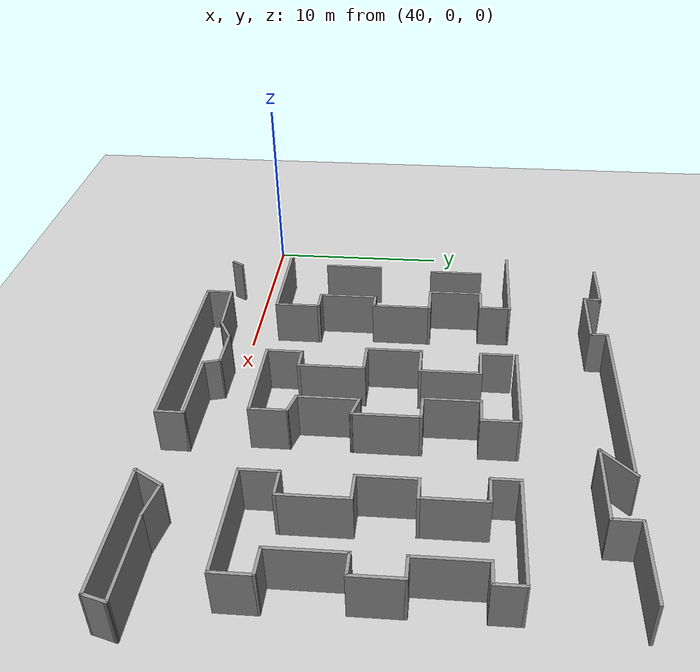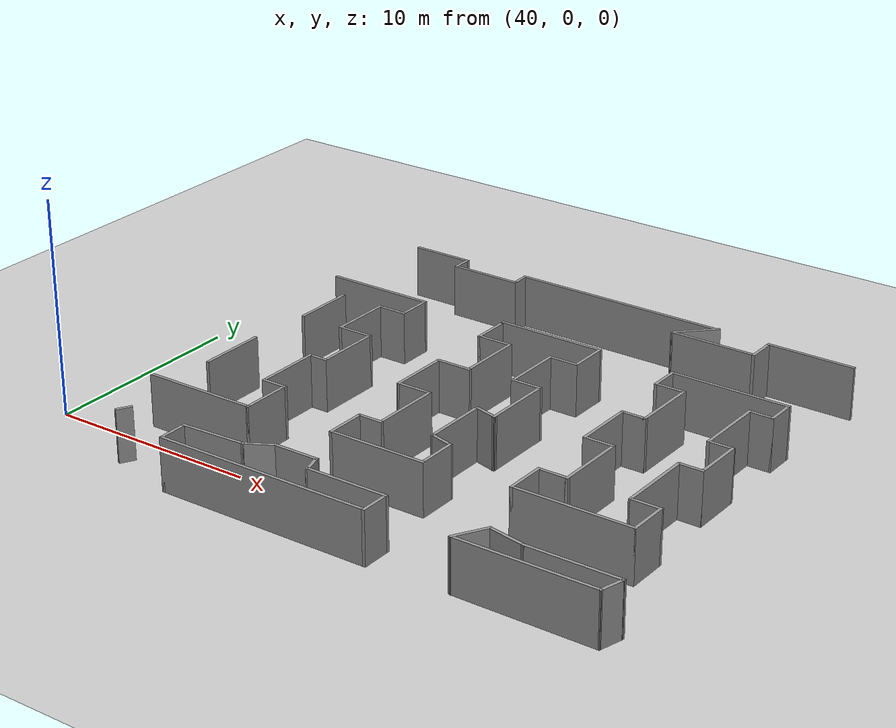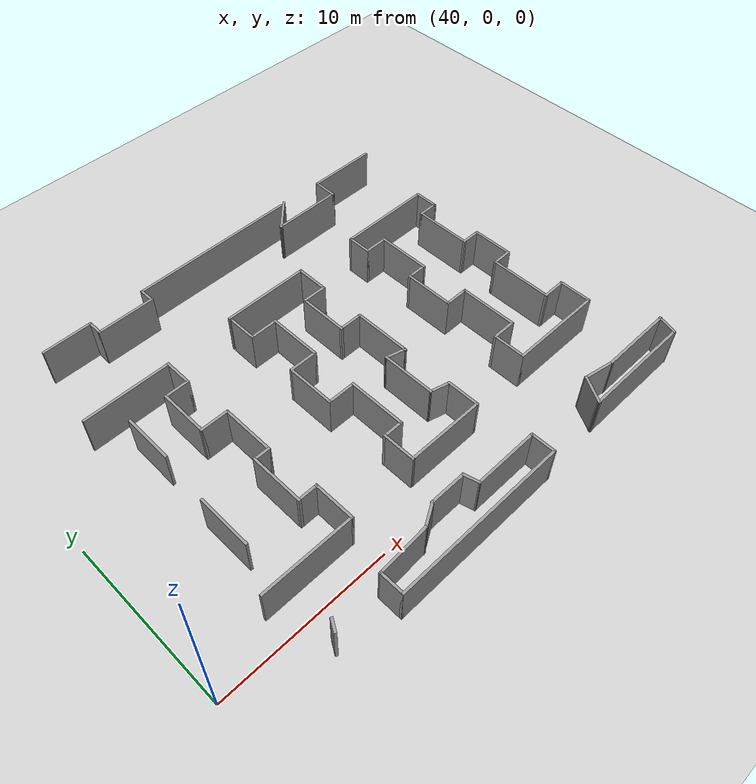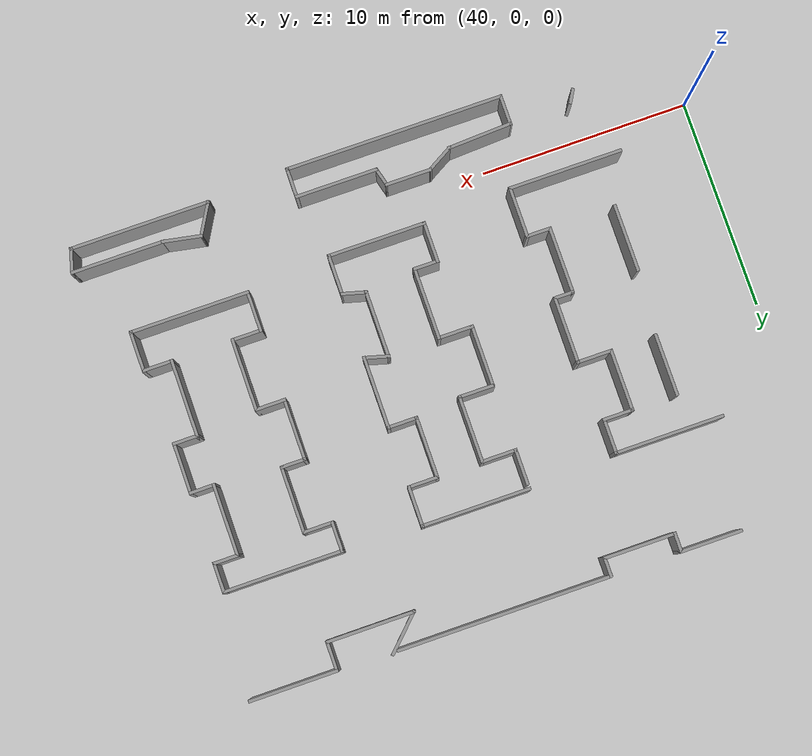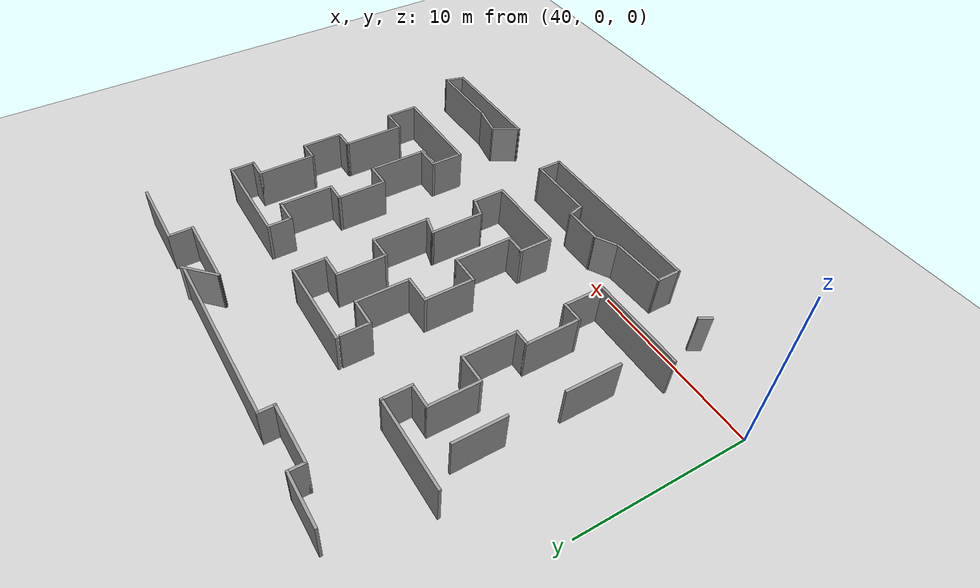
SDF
<sdf version="1.6">
 <world name="default">
  <model name="ground_plane">
   <static>1</static>
   <link name="link">
    <collision name="collision">
     <geometry><plane><normal>0 0 1</normal><size>100 100</size></plane></geometry>
     <surface><friction><ode><mu>100</mu><mu2>50</mu2></ode></friction></surface>
    </collision>
    <visual name="visual">
     <cast_shadows>0</cast_shadows>
     <geometry><plane><normal>0 0 1</normal><size>100 100</size></plane></geometry>
     <material>
      <script><uri>file://media/materials/scripts/gazebo.material</uri><name>Gazebo/Grey</name></script>
     </material>
    </visual>
   </link>
  </model>
  <model name="airport">
   <pose>30.6301 8.89323 0 0 -0 0</pose>
   <link name="Wall_184">
    <collision name="Wall_184_Collision">
     <geometry><box><size>0.75 0.15 2.5</size></box></geometry>
     <pose>0 0 1.25 0 -0 0</pose>
    </collision>
    <visual name="Wall_184_Visual">
     <pose>0 0 1.25 0 -0 0</pose>
     <geometry><box><size>0.75 0.15 2.5</size></box></geometry>
     <material>
      <script><uri>file://media/materials/scripts/gazebo.material</uri><name>Gazebo/Grey</name></script>
      <ambient>1 1 1 1</ambient>
     </material>
     <meta><layer>0</layer></meta>
    </visual>
    <pose>14.5772 -10.5614 0 0 -0 1.0472</pose>
   </link>
   <link name="Wall_196">
    <collision name="Wall_196_Collision">
     <geometry><box><size>3 0.15 2.5</size></box></geometry>
     <pose>0 0 1.25 0 -0 0</pose>
    </collision>
    <visual name="Wall_196_Visual">
     <pose>0 0 1.25 0 -0 0</pose>
     <geometry><box><size>3 0.15 2.5</size></box></geometry>
     <material>
      <script><uri>file://media/materials/scripts/gazebo.material</uri><name>Gazebo/Grey</name></script>
      <ambient>1 1 1 1</ambient>
     </material>
     <meta><layer>0</layer></meta>
    </visual>
    <pose>15.4711 10.6987 0 0 -0 0</pose>
   </link>
   <link name="Wall_201">
    <collision name="Wall_201_Collision">
     <geometry><box><size>3 0.15 2.5</size></box></geometry>
     <pose>0 0 1.25 0 -0 0</pose>
    </collision>
    <visual name="Wall_201_Visual">
     <pose>0 0 1.25 0 -0 0</pose>
     <geometry><box><size>3 0.15 2.5</size></box></geometry>
     <material>
      <script><uri>file://media/materials/scripts/gazebo.material</uri><name>Gazebo/Grey</name></script>
      <ambient>1 1 1 1</ambient>
     </material>
     <meta><layer>0</layer></meta>
    </visual>
    <pose>14.6701 2.53481 0 0 0 -1.5708</pose>
   </link>
   <link name="Wall_205">
    <collision name="Wall_205_Collision">
     <geometry><box><size>3.25 0.15 2.5</size></box></geometry>
     <pose>0 0 1.25 0 -0 0</pose>
    </collision>
    <visual name="Wall_205_Visual">
     <pose>0 0 1.25 0 -0 0</pose>
     <geometry><box><size>3.25 0.15 2.5</size></box></geometry>
     <material>
      <script><uri>file://media/materials/scripts/gazebo.material</uri><name>Gazebo/Grey</name></script>
      <ambient>1 1 1 1</ambient>
     </material>
     <meta><layer>0</layer></meta>
    </visual>
    <pose>14.4201 -3.54019 0 0 0 -1.5708</pose>
   </link>
   <link name="Wall_208">
    <collision name="Wall_208_Collision">
     <geometry><box><size>5.5 0.15 2.5</size></box></geometry>
     <pose>0 0 1.25 0 -0 0</pose>
    </collision>
    <visual name="Wall_208_Visual">
     <pose>0 0 1.25 0 -0 0</pose>
     <geometry><box><size>5.5 0.15 2.5</size></box></geometry>
     <material>
      <script><uri>file://media/materials/scripts/gazebo.material</uri><name>Gazebo/Grey</name></script>
      <ambient>1 1 1 1</ambient>
     </material>
     <meta><layer>0</layer></meta>
    </visual>
    <pose>15.9951 -7.44019 0 0 -0 0</pose>
   </link>
   <link name="Wall_209">
    <collision name="Wall_209_Collision">
     <geometry><box><size>2.5 0.15 2.5</size></box></geometry>
     <pose>0 0 1.25 0 -0 0</pose>
    </collision>
    <visual name="Wall_209_Visual">
     <pose>0 0 1.25 0 -0 0</pose>
     <geometry><box><size>2.5 0.15 2.5</size></box></geometry>
     <material>
      <script><uri>file://media/materials/scripts/gazebo.material</uri><name>Gazebo/Grey</name></script>
      <ambient>1 1 1 1</ambient>
     </material>
     <meta><layer>0</layer></meta>
    </visual>
    <pose>18.6701 -6.26519 0 0 -0 1.5708</pose>
   </link>
   <link name="Wall_210">
    <collision name="Wall_210_Collision">
     <geometry><box><size>1.25 0.15 2.5</size></box></geometry>
     <pose>0 0 1.25 0 -0 0</pose>
    </collision>
    <visual name="Wall_210_Visual">
     <pose>0 0 1.25 0 -0 0</pose>
     <geometry><box><size>1.25 0.15 2.5</size></box></geometry>
     <material>
      <script><uri>file://media/materials/scripts/gazebo.material</uri><name>Gazebo/Grey</name></script>
      <ambient>1 1 1 1</ambient>
     </material>
     <meta><layer>0</layer></meta>
    </visual>
    <pose>18.1201 -5.09019 0 0 -0 3.14159</pose>
   </link>
   <link name="Wall_211">
    <collision name="Wall_211_Collision">
     <geometry><box><size>3.25 0.15 2.5</size></box></geometry>
     <pose>0 0 1.25 0 -0 0</pose>
    </collision>
    <visual name="Wall_211_Visual">
     <pose>0 0 1.25 0 -0 0</pose>
     <geometry><box><size>3.25 0.15 2.5</size></box></geometry>
     <material>
      <script><uri>file://media/materials/scripts/gazebo.material</uri><name>Gazebo/Grey</name></script>
      <ambient>1 1 1 1</ambient>
     </material>
     <meta><layer>0</layer></meta>
    </visual>
    <pose>17.5701 -3.54019 0 0 -0 1.5708</pose>
   </link>
   <link name="Wall_212">
    <collision name="Wall_212_Collision">
     <geometry><box><size>1 0.15 2.5</size></box></geometry>
     <pose>0 0 1.25 0 -0 0</pose>
    </collision>
    <visual name="Wall_212_Visual">
     <pose>0 0 1.25 0 -0 0</pose>
     <geometry><box><size>1 0.15 2.5</size></box></geometry>
     <material>
      <script><uri>file://media/materials/scripts/gazebo.material</uri><name>Gazebo/Grey</name></script>
      <ambient>1 1 1 1</ambient>
     </material>
     <meta><layer>0</layer></meta>
    </visual>
    <pose>17.9951 -1.99019 0 0 -0 0</pose>
   </link>
   <link name="Wall_213">
    <collision name="Wall_213_Collision">
     <geometry><box><size>3.25 0.15 2.5</size></box></geometry>
     <pose>0 0 1.25 0 -0 0</pose>
    </collision>
    <visual name="Wall_213_Visual">
     <pose>0 0 1.25 0 -0 0</pose>
     <geometry><box><size>3.25 0.15 2.5</size></box></geometry>
     <material>
      <script><uri>file://media/materials/scripts/gazebo.material</uri><name>Gazebo/Grey</name></script>
      <ambient>1 1 1 1</ambient>
     </material>
     <meta><layer>0</layer></meta>
    </visual>
    <pose>18.4201 -0.44019 0 0 -0 1.5708</pose>
   </link>
   <link name="Wall_214">
    <collision name="Wall_214_Collision">
     <geometry><box><size>1.75 0.15 2.5</size></box></geometry>
     <pose>0 0 1.25 0 -0 0</pose>
    </collision>
    <visual name="Wall_214_Visual">
     <pose>0 0 1.25 0 -0 0</pose>
     <geometry><box><size>1.75 0.15 2.5</size></box></geometry>
     <material>
      <script><uri>file://media/materials/scripts/gazebo.material</uri><name>Gazebo/Grey</name></script>
      <ambient>1 1 1 1</ambient>
     </material>
     <meta><layer>0</layer></meta>
    </visual>
    <pose>17.6201 1.10981 0 0 -0 3.14159</pose>
   </link>
   <link name="Wall_215">
    <collision name="Wall_215_Collision">
     <geometry><box><size>3 0.15 2.5</size></box></geometry>
     <pose>0 0 1.25 0 -0 0</pose>
    </collision>
    <visual name="Wall_215_Visual">
     <pose>0 0 1.25 0 -0 0</pose>
     <geometry><box><size>3 0.15 2.5</size></box></geometry>
     <material>
      <script><uri>file://media/materials/scripts/gazebo.material</uri><name>Gazebo/Grey</name></script>
      <ambient>1 1 1 1</ambient>
     </material>
     <meta><layer>0</layer></meta>
    </visual>
    <pose>16.8201 2.53481 0 0 -0 1.5708</pose>
   </link>
   <link name="Wall_216">
    <collision name="Wall_216_Collision">
     <geometry><box><size>1.5 0.15 2.5</size></box></geometry>
     <pose>0 0 1.25 0 -0 0</pose>
    </collision>
    <visual name="Wall_216_Visual">
     <pose>0 0 1.25 0 -0 0</pose>
     <geometry><box><size>1.5 0.15 2.5</size></box></geometry>
     <material>
      <script><uri>file://media/materials/scripts/gazebo.material</uri><name>Gazebo/Grey</name></script>
      <ambient>1 1 1 1</ambient>
     </material>
     <meta><layer>0</layer></meta>
    </visual>
    <pose>17.4951 3.95981 0 0 -0 0</pose>
   </link>
   <link name="Wall_217">
    <collision name="Wall_217_Collision">
     <geometry><box><size>1.75 0.15 2.5</size></box></geometry>
     <pose>0 0 1.25 0 -0 0</pose>
    </collision>
    <visual name="Wall_217_Visual">
     <pose>0 0 1.25 0 -0 0</pose>
     <geometry><box><size>1.75 0.15 2.5</size></box></geometry>
     <material>
      <script><uri>file://media/materials/scripts/gazebo.material</uri><name>Gazebo/Grey</name></script>
      <ambient>1 1 1 1</ambient>
     </material>
     <meta><layer>0</layer></meta>
    </visual>
    <pose>18.1701 4.75981 0 0 -0 1.5708</pose>
   </link>
   <link name="Wall_218">
    <collision name="Wall_218_Collision">
     <geometry><box><size>5.25 0.15 2.5</size></box></geometry>
     <pose>0 0 1.25 0 -0 0</pose>
    </collision>
    <visual name="Wall_218_Visual">
     <pose>0 0 1.25 0 -0 0</pose>
     <geometry><box><size>5.25 0.15 2.5</size></box></geometry>
     <material>
      <script><uri>file://media/materials/scripts/gazebo.material</uri><name>Gazebo/Grey</name></script>
      <ambient>1 1 1 1</ambient>
     </material>
     <meta><layer>0</layer></meta>
    </visual>
    <pose>15.6201 5.55981 0 0 -0 3.14159</pose>
   </link>
   <link name="Wall_222">
    <collision name="Wall_222_Collision">
     <geometry><box><size>1.5 0.15 2.5</size></box></geometry>
     <pose>0 0 1.25 0 -0 0</pose>
    </collision>
    <visual name="Wall_222_Visual">
     <pose>0 0 1.25 0 -0 0</pose>
     <geometry><box><size>1.5 0.15 2.5</size></box></geometry>
     <material>
      <script><uri>file://media/materials/scripts/gazebo.material</uri><name>Gazebo/Grey</name></script>
      <ambient>1 1 1 1</ambient>
     </material>
     <meta><layer>0</layer></meta>
    </visual>
    <pose>17.6662 -10.9441 0 0 0 -1.5708</pose>
   </link>
   <link name="Wall_223">
    <collision name="Wall_223_Collision">
     <geometry><box><size>10.5 0.15 2.5</size></box></geometry>
     <pose>0 0 1.25 0 -0 0</pose>
    </collision>
    <visual name="Wall_223_Visual">
     <pose>0 0 1.25 0 -0 0</pose>
     <geometry><box><size>10.5 0.15 2.5</size></box></geometry>
     <material>
      <script><uri>file://media/materials/scripts/gazebo.material</uri><name>Gazebo/Grey</name></script>
      <ambient>1 1 1 1</ambient>
     </material>
     <meta><layer>0</layer></meta>
    </visual>
    <pose>22.8412 -11.6191 0 0 -0 0</pose>
   </link>
   <link name="Wall_224">
    <collision name="Wall_224_Collision">
     <geometry><box><size>1.5 0.15 2.5</size></box></geometry>
     <pose>0 0 1.25 0 -0 0</pose>
    </collision>
    <visual name="Wall_224_Visual">
     <pose>0 0 1.25 0 -0 0</pose>
     <geometry><box><size>1.5 0.15 2.5</size></box></geometry>
     <material>
      <script><uri>file://media/materials/scripts/gazebo.material</uri><name>Gazebo/Grey</name></script>
      <ambient>1 1 1 1</ambient>
     </material>
     <meta><layer>0</layer></meta>
    </visual>
    <pose>28.0162 -10.9441 0 0 -0 1.5708</pose>
   </link>
   <link name="Wall_225">
    <collision name="Wall_225_Collision">
     <geometry><box><size>4 0.15 2.5</size></box></geometry>
     <pose>0 0 1.25 0 -0 0</pose>
    </collision>
    <visual name="Wall_225_Visual">
     <pose>0 0 1.25 0 -0 0</pose>
     <geometry><box><size>4 0.15 2.5</size></box></geometry>
     <material>
      <script><uri>file://media/materials/scripts/gazebo.material</uri><name>Gazebo/Grey</name></script>
      <ambient>1 1 1 1</ambient>
     </material>
     <meta><layer>0</layer></meta>
    </visual>
    <pose>26.0912 -10.2691 0 0 -0 3.14159</pose>
   </link>
   <link name="Wall_226">
    <collision name="Wall_226_Collision">
     <geometry><box><size>1 0.15 2.5</size></box></geometry>
     <pose>0 0 1.25 0 -0 0</pose>
    </collision>
    <visual name="Wall_226_Visual">
     <pose>0 0 1.25 0 -0 0</pose>
     <geometry><box><size>1 0.15 2.5</size></box></geometry>
     <material>
      <script><uri>file://media/materials/scripts/gazebo.material</uri><name>Gazebo/Grey</name></script>
      <ambient>1 1 1 1</ambient>
     </material>
     <meta><layer>0</layer></meta>
    </visual>
    <pose>24.0562 -9.85857 0 0 -0 1.8326</pose>
   </link>
   <link name="Wall_227">
    <collision name="Wall_227_Collision">
     <geometry><box><size>2.25 0.15 2.5</size></box></geometry>
     <pose>0 0 1.25 0 -0 0</pose>
    </collision>
    <visual name="Wall_227_Visual">
     <pose>0 0 1.25 0 -0 0</pose>
     <geometry><box><size>2.25 0.15 2.5</size></box></geometry>
     <material>
      <script><uri>file://media/materials/scripts/gazebo.material</uri><name>Gazebo/Grey</name></script>
      <ambient>1 1 1 1</ambient>
     </material>
     <meta><layer>0</layer></meta>
    </visual>
    <pose>22.8962 -9.44805 0 0 -0 3.14159</pose>
   </link>
   <link name="Wall_228">
    <collision name="Wall_228_Collision">
     <geometry><box><size>1.5 0.15 2.5</size></box></geometry>
     <pose>0 0 1.25 0 -0 0</pose>
    </collision>
    <visual name="Wall_228_Visual">
     <pose>0 0 1.25 0 -0 0</pose>
     <geometry><box><size>1.5 0.15 2.5</size></box></geometry>
     <material>
      <script><uri>file://media/materials/scripts/gazebo.material</uri><name>Gazebo/Grey</name></script>
      <ambient>1 1 1 1</ambient>
     </material>
     <meta><layer>0</layer></meta>
    </visual>
    <pose>21.2617 -9.78555 0 0 0 -2.61799</pose>
   </link>
   <link name="Wall_229">
    <collision name="Wall_229_Collision">
     <geometry><box><size>3.16441 0.15 2.5</size></box></geometry>
     <pose>0 0 1.25 0 -0 0</pose>
    </collision>
    <visual name="Wall_229_Visual">
     <pose>0 0 1.25 0 -0 0</pose>
     <geometry><box><size>3.16441 0.15 2.5</size></box></geometry>
     <material>
      <script><uri>file://media/materials/scripts/gazebo.material</uri><name>Gazebo/Grey</name></script>
      <ambient>1 1 1 1</ambient>
     </material>
     <meta><layer>0</layer></meta>
    </visual>
    <pose>19.1716 -10.1961 0 0 0 -3.09313</pose>
   </link>
   <link name="Wall_234">
    <collision name="Wall_234_Collision">
     <geometry><box><size>1.75 0.15 2.5</size></box></geometry>
     <pose>0 0 1.25 0 -0 0</pose>
    </collision>
    <visual name="Wall_234_Visual">
     <pose>0 0 1.25 0 -0 0</pose>
     <geometry><box><size>1.75 0.15 2.5</size></box></geometry>
     <material>
      <script><uri>file://media/materials/scripts/gazebo.material</uri><name>Gazebo/Grey</name></script>
      <ambient>1 1 1 1</ambient>
     </material>
     <meta><layer>0</layer></meta>
    </visual>
    <pose>22.4113 4.74801 0 0 0 -1.5708</pose>
   </link>
   <link name="Wall_235">
    <collision name="Wall_235_Collision">
     <geometry><box><size>1.75 0.15 2.5</size></box></geometry>
     <pose>0 0 1.25 0 -0 0</pose>
    </collision>
    <visual name="Wall_235_Visual">
     <pose>0 0 1.25 0 -0 0</pose>
     <geometry><box><size>1.75 0.15 2.5</size></box></geometry>
     <material>
      <script><uri>file://media/materials/scripts/gazebo.material</uri><name>Gazebo/Grey</name></script>
      <ambient>1 1 1 1</ambient>
     </material>
     <meta><layer>0</layer></meta>
    </visual>
    <pose>23.2113 3.94801 0 0 -0 0</pose>
   </link>
   <link name="Wall_236">
    <collision name="Wall_236_Collision">
     <geometry><box><size>3.25 0.15 2.5</size></box></geometry>
     <pose>0 0 1.25 0 -0 0</pose>
    </collision>
    <visual name="Wall_236_Visual">
     <pose>0 0 1.25 0 -0 0</pose>
     <geometry><box><size>3.25 0.15 2.5</size></box></geometry>
     <material>
      <script><uri>file://media/materials/scripts/gazebo.material</uri><name>Gazebo/Grey</name></script>
      <ambient>1 1 1 1</ambient>
     </material>
     <meta><layer>0</layer></meta>
    </visual>
    <pose>24.0113 2.39801 0 0 0 -1.5708</pose>
   </link>
   <link name="Wall_239">
    <collision name="Wall_239_Collision">
     <geometry><box><size>1.75 0.15 2.5</size></box></geometry>
     <pose>0 0 1.25 0 -0 0</pose>
    </collision>
    <visual name="Wall_239_Visual">
     <pose>0 0 1.25 0 -0 0</pose>
     <geometry><box><size>1.75 0.15 2.5</size></box></geometry>
     <material>
      <script><uri>file://media/materials/scripts/gazebo.material</uri><name>Gazebo/Grey</name></script>
      <ambient>1 1 1 1</ambient>
     </material>
     <meta><layer>0</layer></meta>
    </visual>
    <pose>23.2113 0.848013 0 0 -0 3.14159</pose>
   </link>
   <link name="Wall_240">
    <collision name="Wall_240_Collision">
     <geometry><box><size>3 0.15 2.5</size></box></geometry>
     <pose>0 0 1.25 0 -0 0</pose>
    </collision>
    <visual name="Wall_240_Visual">
     <pose>0 0 1.25 0 -0 0</pose>
     <geometry><box><size>3 0.15 2.5</size></box></geometry>
     <material>
      <script><uri>file://media/materials/scripts/gazebo.material</uri><name>Gazebo/Grey</name></script>
      <ambient>1 1 1 1</ambient>
     </material>
     <meta><layer>0</layer></meta>
    </visual>
    <pose>22.4113 -0.576987 0 0 0 -1.5708</pose>
   </link>
   <link name="Wall_241">
    <collision name="Wall_241_Collision">
     <geometry><box><size>1.75 0.15 2.5</size></box></geometry>
     <pose>0 0 1.25 0 -0 0</pose>
    </collision>
    <visual name="Wall_241_Visual">
     <pose>0 0 1.25 0 -0 0</pose>
     <geometry><box><size>1.75 0.15 2.5</size></box></geometry>
     <material>
      <script><uri>file://media/materials/scripts/gazebo.material</uri><name>Gazebo/Grey</name></script>
      <ambient>1 1 1 1</ambient>
     </material>
     <meta><layer>0</layer></meta>
    </visual>
    <pose>23.2113 -2.00199 0 0 -0 0</pose>
   </link>
   <link name="Wall_244">
    <collision name="Wall_244_Collision">
     <geometry><box><size>3.5 0.15 2.5</size></box></geometry>
     <pose>0 0 1.25 0 -0 0</pose>
    </collision>
    <visual name="Wall_244_Visual">
     <pose>0 0 1.25 0 -0 0</pose>
     <geometry><box><size>3.5 0.15 2.5</size></box></geometry>
     <material>
      <script><uri>file://media/materials/scripts/gazebo.material</uri><name>Gazebo/Grey</name></script>
      <ambient>1 1 1 1</ambient>
     </material>
     <meta><layer>0</layer></meta>
    </visual>
    <pose>24.0113 -3.67699 0 0 0 -1.5708</pose>
   </link>
   <link name="Wall_245">
    <collision name="Wall_245_Collision">
     <geometry><box><size>1.25 0.15 2.5</size></box></geometry>
     <pose>0 0 1.25 0 -0 0</pose>
    </collision>
    <visual name="Wall_245_Visual">
     <pose>0 0 1.25 0 -0 0</pose>
     <geometry><box><size>1.25 0.15 2.5</size></box></geometry>
     <material>
      <script><uri>file://media/materials/scripts/gazebo.material</uri><name>Gazebo/Grey</name></script>
      <ambient>1 1 1 1</ambient>
     </material>
     <meta><layer>0</layer></meta>
    </visual>
    <pose>23.4613 -5.35199 0 0 -0 3.14159</pose>
   </link>
   <link name="Wall_246">
    <collision name="Wall_246_Collision">
     <geometry><box><size>2 0.15 2.5</size></box></geometry>
     <pose>0 0 1.25 0 -0 0</pose>
    </collision>
    <visual name="Wall_246_Visual">
     <pose>0 0 1.25 0 -0 0</pose>
     <geometry><box><size>2 0.15 2.5</size></box></geometry>
     <material>
      <script><uri>file://media/materials/scripts/gazebo.material</uri><name>Gazebo/Grey</name></script>
      <ambient>1 1 1 1</ambient>
     </material>
     <meta><layer>0</layer></meta>
    </visual>
    <pose>22.9113 -6.27699 0 0 0 -1.5708</pose>
   </link>
   <link name="Wall_247">
    <collision name="Wall_247_Collision">
     <geometry><box><size>4.75 0.15 2.5</size></box></geometry>
     <pose>0 0 1.25 0 -0 0</pose>
    </collision>
    <visual name="Wall_247_Visual">
     <pose>0 0 1.25 0 -0 0</pose>
     <geometry><box><size>4.75 0.15 2.5</size></box></geometry>
     <material>
      <script><uri>file://media/materials/scripts/gazebo.material</uri><name>Gazebo/Grey</name></script>
      <ambient>1 1 1 1</ambient>
     </material>
     <meta><layer>0</layer></meta>
    </visual>
    <pose>25.2113 -7.20199 0 0 -0 0</pose>
   </link>
   <link name="Wall_248">
    <collision name="Wall_248_Collision">
     <geometry><box><size>2 0.15 2.5</size></box></geometry>
     <pose>0 0 1.25 0 -0 0</pose>
    </collision>
    <visual name="Wall_248_Visual">
     <pose>0 0 1.25 0 -0 0</pose>
     <geometry><box><size>2 0.15 2.5</size></box></geometry>
     <material>
      <script><uri>file://media/materials/scripts/gazebo.material</uri><name>Gazebo/Grey</name></script>
      <ambient>1 1 1 1</ambient>
     </material>
     <meta><layer>0</layer></meta>
    </visual>
    <pose>27.5113 -6.27699 0 0 -0 1.5708</pose>
   </link>
   <link name="Wall_249">
    <collision name="Wall_249_Collision">
     <geometry><box><size>1.25 0.15 2.5</size></box></geometry>
     <pose>0 0 1.25 0 -0 0</pose>
    </collision>
    <visual name="Wall_249_Visual">
     <pose>0 0 1.25 0 -0 0</pose>
     <geometry><box><size>1.25 0.15 2.5</size></box></geometry>
     <material>
      <script><uri>file://media/materials/scripts/gazebo.material</uri><name>Gazebo/Grey</name></script>
      <ambient>1 1 1 1</ambient>
     </material>
     <meta><layer>0</layer></meta>
    </visual>
    <pose>26.9801 -5.20964 0 0 -0 2.87979</pose>
   </link>
   <link name="Wall_250">
    <collision name="Wall_250_Collision">
     <geometry><box><size>3.25 0.15 2.5</size></box></geometry>
     <pose>0 0 1.25 0 -0 0</pose>
    </collision>
    <visual name="Wall_250_Visual">
     <pose>0 0 1.25 0 -0 0</pose>
     <geometry><box><size>3.25 0.15 2.5</size></box></geometry>
     <material>
      <script><uri>file://media/materials/scripts/gazebo.material</uri><name>Gazebo/Grey</name></script>
      <ambient>1 1 1 1</ambient>
     </material>
     <meta><layer>0</layer></meta>
    </visual>
    <pose>26.4488 -3.51729 0 0 -0 1.5708</pose>
   </link>
   <link name="Wall_251">
    <collision name="Wall_251_Collision">
     <geometry><box><size>1.25 0.15 2.5</size></box></geometry>
     <pose>0 0 1.25 0 -0 0</pose>
    </collision>
    <visual name="Wall_251_Visual">
     <pose>0 0 1.25 0 -0 0</pose>
     <geometry><box><size>1.25 0.15 2.5</size></box></geometry>
     <material>
      <script><uri>file://media/materials/scripts/gazebo.material</uri><name>Gazebo/Grey</name></script>
      <ambient>1 1 1 1</ambient>
     </material>
     <meta><layer>0</layer></meta>
    </visual>
    <pose>26.9801 -2.10964 0 0 0 -0.261799</pose>
   </link>
   <link name="Wall_252">
    <collision name="Wall_252_Collision">
     <geometry><box><size>3.5 0.15 2.5</size></box></geometry>
     <pose>0 0 1.25 0 -0 0</pose>
    </collision>
    <visual name="Wall_252_Visual">
     <pose>0 0 1.25 0 -0 0</pose>
     <geometry><box><size>3.5 0.15 2.5</size></box></geometry>
     <material>
      <script><uri>file://media/materials/scripts/gazebo.material</uri><name>Gazebo/Grey</name></script>
      <ambient>1 1 1 1</ambient>
     </material>
     <meta><layer>0</layer></meta>
    </visual>
    <pose>27.5113 -0.576987 0 0 -0 1.5708</pose>
   </link>
   <link name="Wall_253">
    <collision name="Wall_253_Collision">
     <geometry><box><size>1.5 0.15 2.5</size></box></geometry>
     <pose>0 0 1.25 0 -0 0</pose>
    </collision>
    <visual name="Wall_253_Visual">
     <pose>0 0 1.25 0 -0 0</pose>
     <geometry><box><size>1.5 0.15 2.5</size></box></geometry>
     <material>
      <script><uri>file://media/materials/scripts/gazebo.material</uri><name>Gazebo/Grey</name></script>
      <ambient>1 1 1 1</ambient>
     </material>
     <meta><layer>0</layer></meta>
    </visual>
    <pose>26.8363 1.09801 0 0 -0 3.14159</pose>
   </link>
   <link name="Wall_254">
    <collision name="Wall_254_Collision">
     <geometry><box><size>3 0.15 2.5</size></box></geometry>
     <pose>0 0 1.25 0 -0 0</pose>
    </collision>
    <visual name="Wall_254_Visual">
     <pose>0 0 1.25 0 -0 0</pose>
     <geometry><box><size>3 0.15 2.5</size></box></geometry>
     <material>
      <script><uri>file://media/materials/scripts/gazebo.material</uri><name>Gazebo/Grey</name></script>
      <ambient>1 1 1 1</ambient>
     </material>
     <meta><layer>0</layer></meta>
    </visual>
    <pose>26.1613 2.52301 0 0 -0 1.5708</pose>
   </link>
   <link name="Wall_255">
    <collision name="Wall_255_Collision">
     <geometry><box><size>1.5 0.15 2.5</size></box></geometry>
     <pose>0 0 1.25 0 -0 0</pose>
    </collision>
    <visual name="Wall_255_Visual">
     <pose>0 0 1.25 0 -0 0</pose>
     <geometry><box><size>1.5 0.15 2.5</size></box></geometry>
     <material>
      <script><uri>file://media/materials/scripts/gazebo.material</uri><name>Gazebo/Grey</name></script>
      <ambient>1 1 1 1</ambient>
     </material>
     <meta><layer>0</layer></meta>
    </visual>
    <pose>26.8363 3.94801 0 0 -0 0</pose>
   </link>
   <link name="Wall_256">
    <collision name="Wall_256_Collision">
     <geometry><box><size>2 0.15 2.5</size></box></geometry>
     <pose>0 0 1.25 0 -0 0</pose>
    </collision>
    <visual name="Wall_256_Visual">
     <pose>0 0 1.25 0 -0 0</pose>
     <geometry><box><size>2 0.15 2.5</size></box></geometry>
     <material>
      <script><uri>file://media/materials/scripts/gazebo.material</uri><name>Gazebo/Grey</name></script>
      <ambient>1 1 1 1</ambient>
     </material>
     <meta><layer>0</layer></meta>
    </visual>
    <pose>27.5113 4.87301 0 0 -0 1.5708</pose>
   </link>
   <link name="Wall_257">
    <collision name="Wall_257_Collision">
     <geometry><box><size>5.25 0.15 2.5</size></box></geometry>
     <pose>0 0 1.25 0 -0 0</pose>
    </collision>
    <visual name="Wall_257_Visual">
     <pose>0 0 1.25 0 -0 0</pose>
     <geometry><box><size>5.25 0.15 2.5</size></box></geometry>
     <material>
      <script><uri>file://media/materials/scripts/gazebo.material</uri><name>Gazebo/Grey</name></script>
      <ambient>1 1 1 1</ambient>
     </material>
     <meta><layer>0</layer></meta>
    </visual>
    <pose>24.9613 5.79801 0 0 -0 3.14159</pose>
   </link>
   <link name="Wall_261">
    <collision name="Wall_261_Collision">
     <geometry><box><size>1 0.15 2.5</size></box></geometry>
     <pose>0 0 1.25 0 -0 0</pose>
    </collision>
    <visual name="Wall_261_Visual">
     <pose>0 0 1.25 0 -0 0</pose>
     <geometry><box><size>1 0.15 2.5</size></box></geometry>
     <material>
      <script><uri>file://media/materials/scripts/gazebo.material</uri><name>Gazebo/Grey</name></script>
      <ambient>1 1 1 1</ambient>
     </material>
     <meta><layer>0</layer></meta>
    </visual>
    <pose>16.8961 10.2737 0 0 0 -1.5708</pose>
   </link>
   <link name="Wall_262">
    <collision name="Wall_262_Collision">
     <geometry><box><size>3.5 0.15 2.5</size></box></geometry>
     <pose>0 0 1.25 0 -0 0</pose>
    </collision>
    <visual name="Wall_262_Visual">
     <pose>0 0 1.25 0 -0 0</pose>
     <geometry><box><size>3.5 0.15 2.5</size></box></geometry>
     <material>
      <script><uri>file://media/materials/scripts/gazebo.material</uri><name>Gazebo/Grey</name></script>
      <ambient>1 1 1 1</ambient>
     </material>
     <meta><layer>0</layer></meta>
    </visual>
    <pose>18.5711 9.84868 0 0 -0 0</pose>
   </link>
   <link name="Wall_263">
    <collision name="Wall_263_Collision">
     <geometry><box><size>1 0.15 2.5</size></box></geometry>
     <pose>0 0 1.25 0 -0 0</pose>
    </collision>
    <visual name="Wall_263_Visual">
     <pose>0 0 1.25 0 -0 0</pose>
     <geometry><box><size>1 0.15 2.5</size></box></geometry>
     <material>
      <script><uri>file://media/materials/scripts/gazebo.material</uri><name>Gazebo/Grey</name></script>
      <ambient>1 1 1 1</ambient>
     </material>
     <meta><layer>0</layer></meta>
    </visual>
    <pose>20.2461 10.2737 0 0 -0 1.5708</pose>
   </link>
   <link name="Wall_264">
    <collision name="Wall_264_Collision">
     <geometry><box><size>10.25 0.15 2.5</size></box></geometry>
     <pose>0 0 1.25 0 -0 0</pose>
    </collision>
    <visual name="Wall_264_Visual">
     <pose>0 0 1.25 0 -0 0</pose>
     <geometry><box><size>10.25 0.15 2.5</size></box></geometry>
     <material>
      <script><uri>file://media/materials/scripts/gazebo.material</uri><name>Gazebo/Grey</name></script>
      <ambient>1 1 1 1</ambient>
     </material>
     <meta><layer>0</layer></meta>
    </visual>
    <pose>25.2961 10.6987 0 0 -0 0</pose>
   </link>
   <link name="Wall_266">
    <collision name="Wall_266_Collision">
     <geometry><box><size>1.5 0.15 2.5</size></box></geometry>
     <pose>0 0 1.25 0 -0 0</pose>
    </collision>
    <visual name="Wall_266_Visual">
     <pose>0 0 1.25 0 -0 0</pose>
     <geometry><box><size>1.5 0.15 2.5</size></box></geometry>
     <material>
      <script><uri>file://media/materials/scripts/gazebo.material</uri><name>Gazebo/Grey</name></script>
      <ambient>1 1 1 1</ambient>
     </material>
     <meta><layer>0</layer></meta>
    </visual>
    <pose>31.2933 4.99468 0 0 0 -1.5708</pose>
   </link>
   <link name="Wall_267">
    <collision name="Wall_267_Collision">
     <geometry><box><size>1.5 0.15 2.5</size></box></geometry>
     <pose>0 0 1.25 0 -0 0</pose>
    </collision>
    <visual name="Wall_267_Visual">
     <pose>0 0 1.25 0 -0 0</pose>
     <geometry><box><size>1.5 0.15 2.5</size></box></geometry>
     <material>
      <script><uri>file://media/materials/scripts/gazebo.material</uri><name>Gazebo/Grey</name></script>
      <ambient>1 1 1 1</ambient>
     </material>
     <meta><layer>0</layer></meta>
    </visual>
    <pose>31.9683 4.31968 0 0 -0 0</pose>
   </link>
   <link name="Wall_268">
    <collision name="Wall_268_Collision">
     <geometry><box><size>3.25 0.15 2.5</size></box></geometry>
     <pose>0 0 1.25 0 -0 0</pose>
    </collision>
    <visual name="Wall_268_Visual">
     <pose>0 0 1.25 0 -0 0</pose>
     <geometry><box><size>3.25 0.15 2.5</size></box></geometry>
     <material>
      <script><uri>file://media/materials/scripts/gazebo.material</uri><name>Gazebo/Grey</name></script>
      <ambient>1 1 1 1</ambient>
     </material>
     <meta><layer>0</layer></meta>
    </visual>
    <pose>32.6433 2.76968 0 0 0 -1.5708</pose>
   </link>
   <link name="Wall_269">
    <collision name="Wall_269_Collision">
     <geometry><box><size>1.25 0.15 2.5</size></box></geometry>
     <pose>0 0 1.25 0 -0 0</pose>
    </collision>
    <visual name="Wall_269_Visual">
     <pose>0 0 1.25 0 -0 0</pose>
     <geometry><box><size>1.25 0.15 2.5</size></box></geometry>
     <material>
      <script><uri>file://media/materials/scripts/gazebo.material</uri><name>Gazebo/Grey</name></script>
      <ambient>1 1 1 1</ambient>
     </material>
     <meta><layer>0</layer></meta>
    </visual>
    <pose>32.0933 1.21968 0 0 -0 3.14159</pose>
   </link>
   <link name="Wall_270">
    <collision name="Wall_270_Collision">
     <geometry><box><size>3 0.15 2.5</size></box></geometry>
     <pose>0 0 1.25 0 -0 0</pose>
    </collision>
    <visual name="Wall_270_Visual">
     <pose>0 0 1.25 0 -0 0</pose>
     <geometry><box><size>3 0.15 2.5</size></box></geometry>
     <material>
      <script><uri>file://media/materials/scripts/gazebo.material</uri><name>Gazebo/Grey</name></script>
      <ambient>1 1 1 1</ambient>
     </material>
     <meta><layer>0</layer></meta>
    </visual>
    <pose>31.5433 -0.205317 0 0 0 -1.5708</pose>
   </link>
   <link name="Wall_271">
    <collision name="Wall_271_Collision">
     <geometry><box><size>1.5 0.15 2.5</size></box></geometry>
     <pose>0 0 1.25 0 -0 0</pose>
    </collision>
    <visual name="Wall_271_Visual">
     <pose>0 0 1.25 0 -0 0</pose>
     <geometry><box><size>1.5 0.15 2.5</size></box></geometry>
     <material>
      <script><uri>file://media/materials/scripts/gazebo.material</uri><name>Gazebo/Grey</name></script>
      <ambient>1 1 1 1</ambient>
     </material>
     <meta><layer>0</layer></meta>
    </visual>
    <pose>32.2183 -1.63032 0 0 -0 0</pose>
   </link>
   <link name="Wall_272">
    <collision name="Wall_272_Collision">
     <geometry><box><size>3.5 0.15 2.5</size></box></geometry>
     <pose>0 0 1.25 0 -0 0</pose>
    </collision>
    <visual name="Wall_272_Visual">
     <pose>0 0 1.25 0 -0 0</pose>
     <geometry><box><size>3.5 0.15 2.5</size></box></geometry>
     <material>
      <script><uri>file://media/materials/scripts/gazebo.material</uri><name>Gazebo/Grey</name></script>
      <ambient>1 1 1 1</ambient>
     </material>
     <meta><layer>0</layer></meta>
    </visual>
    <pose>32.8933 -3.30532 0 0 0 -1.5708</pose>
   </link>
   <link name="Wall_273">
    <collision name="Wall_273_Collision">
     <geometry><box><size>1.5 0.15 2.5</size></box></geometry>
     <pose>0 0 1.25 0 -0 0</pose>
    </collision>
    <visual name="Wall_273_Visual">
     <pose>0 0 1.25 0 -0 0</pose>
     <geometry><box><size>1.5 0.15 2.5</size></box></geometry>
     <material>
      <script><uri>file://media/materials/scripts/gazebo.material</uri><name>Gazebo/Grey</name></script>
      <ambient>1 1 1 1</ambient>
     </material>
     <meta><layer>0</layer></meta>
    </visual>
    <pose>32.2183 -4.98032 0 0 -0 3.14159</pose>
   </link>
   <link name="Wall_274">
    <collision name="Wall_274_Collision">
     <geometry><box><size>2 0.15 2.5</size></box></geometry>
     <pose>0 0 1.25 0 -0 0</pose>
    </collision>
    <visual name="Wall_274_Visual">
     <pose>0 0 1.25 0 -0 0</pose>
     <geometry><box><size>2 0.15 2.5</size></box></geometry>
     <material>
      <script><uri>file://media/materials/scripts/gazebo.material</uri><name>Gazebo/Grey</name></script>
      <ambient>1 1 1 1</ambient>
     </material>
     <meta><layer>0</layer></meta>
    </visual>
    <pose>31.5433 -5.90532 0 0 0 -1.5708</pose>
   </link>
   <link name="Wall_275">
    <collision name="Wall_275_Collision">
     <geometry><box><size>5.75 0.15 2.5</size></box></geometry>
     <pose>0 0 1.25 0 -0 0</pose>
    </collision>
    <visual name="Wall_275_Visual">
     <pose>0 0 1.25 0 -0 0</pose>
     <geometry><box><size>5.75 0.15 2.5</size></box></geometry>
     <material>
      <script><uri>file://media/materials/scripts/gazebo.material</uri><name>Gazebo/Grey</name></script>
      <ambient>1 1 1 1</ambient>
     </material>
     <meta><layer>0</layer></meta>
    </visual>
    <pose>34.3433 -6.83032 0 0 -0 0</pose>
   </link>
   <link name="Wall_276">
    <collision name="Wall_276_Collision">
     <geometry><box><size>2 0.15 2.5</size></box></geometry>
     <pose>0 0 1.25 0 -0 0</pose>
    </collision>
    <visual name="Wall_276_Visual">
     <pose>0 0 1.25 0 -0 0</pose>
     <geometry><box><size>2 0.15 2.5</size></box></geometry>
     <material>
      <script><uri>file://media/materials/scripts/gazebo.material</uri><name>Gazebo/Grey</name></script>
      <ambient>1 1 1 1</ambient>
     </material>
     <meta><layer>0</layer></meta>
    </visual>
    <pose>37.1433 -5.90532 0 0 -0 1.5708</pose>
   </link>
   <link name="Wall_277">
    <collision name="Wall_277_Collision">
     <geometry><box><size>1.5 0.15 2.5</size></box></geometry>
     <pose>0 0 1.25 0 -0 0</pose>
    </collision>
    <visual name="Wall_277_Visual">
     <pose>0 0 1.25 0 -0 0</pose>
     <geometry><box><size>1.5 0.15 2.5</size></box></geometry>
     <material>
      <script><uri>file://media/materials/scripts/gazebo.material</uri><name>Gazebo/Grey</name></script>
      <ambient>1 1 1 1</ambient>
     </material>
     <meta><layer>0</layer></meta>
    </visual>
    <pose>36.4683 -4.98032 0 0 -0 3.14159</pose>
   </link>
   <link name="Wall_278">
    <collision name="Wall_278_Collision">
     <geometry><box><size>3.75 0.15 2.5</size></box></geometry>
     <pose>0 0 1.25 0 -0 0</pose>
    </collision>
    <visual name="Wall_278_Visual">
     <pose>0 0 1.25 0 -0 0</pose>
     <geometry><box><size>3.75 0.15 2.5</size></box></geometry>
     <material>
      <script><uri>file://media/materials/scripts/gazebo.material</uri><name>Gazebo/Grey</name></script>
      <ambient>1 1 1 1</ambient>
     </material>
     <meta><layer>0</layer></meta>
    </visual>
    <pose>35.7933 -3.18032 0 0 -0 1.5708</pose>
   </link>
   <link name="Wall_279">
    <collision name="Wall_279_Collision">
     <geometry><box><size>1.25 0.15 2.5</size></box></geometry>
     <pose>0 0 1.25 0 -0 0</pose>
    </collision>
    <visual name="Wall_279_Visual">
     <pose>0 0 1.25 0 -0 0</pose>
     <geometry><box><size>1.25 0.15 2.5</size></box></geometry>
     <material>
      <script><uri>file://media/materials/scripts/gazebo.material</uri><name>Gazebo/Grey</name></script>
      <ambient>1 1 1 1</ambient>
     </material>
     <meta><layer>0</layer></meta>
    </visual>
    <pose>36.3433 -1.38032 0 0 -0 0</pose>
   </link>
   <link name="Wall_280">
    <collision name="Wall_280_Collision">
     <geometry><box><size>2.5 0.15 2.5</size></box></geometry>
     <pose>0 0 1.25 0 -0 0</pose>
    </collision>
    <visual name="Wall_280_Visual">
     <pose>0 0 1.25 0 -0 0</pose>
     <geometry><box><size>2.5 0.15 2.5</size></box></geometry>
     <material>
      <script><uri>file://media/materials/scripts/gazebo.material</uri><name>Gazebo/Grey</name></script>
      <ambient>1 1 1 1</ambient>
     </material>
     <meta><layer>0</layer></meta>
    </visual>
    <pose>36.8933 -0.205317 0 0 -0 1.5708</pose>
   </link>
   <link name="Wall_281">
    <collision name="Wall_281_Collision">
     <geometry><box><size>1.25 0.15 2.5</size></box></geometry>
     <pose>0 0 1.25 0 -0 0</pose>
    </collision>
    <visual name="Wall_281_Visual">
     <pose>0 0 1.25 0 -0 0</pose>
     <geometry><box><size>1.25 0.15 2.5</size></box></geometry>
     <material>
      <script><uri>file://media/materials/scripts/gazebo.material</uri><name>Gazebo/Grey</name></script>
      <ambient>1 1 1 1</ambient>
     </material>
     <meta><layer>0</layer></meta>
    </visual>
    <pose>36.3433 0.969683 0 0 -0 3.14159</pose>
   </link>
   <link name="Wall_282">
    <collision name="Wall_282_Collision">
     <geometry><box><size>3.5 0.15 2.5</size></box></geometry>
     <pose>0 0 1.25 0 -0 0</pose>
    </collision>
    <visual name="Wall_282_Visual">
     <pose>0 0 1.25 0 -0 0</pose>
     <geometry><box><size>3.5 0.15 2.5</size></box></geometry>
     <material>
      <script><uri>file://media/materials/scripts/gazebo.material</uri><name>Gazebo/Grey</name></script>
      <ambient>1 1 1 1</ambient>
     </material>
     <meta><layer>0</layer></meta>
    </visual>
    <pose>35.7933 2.64468 0 0 -0 1.5708</pose>
   </link>
   <link name="Wall_283">
    <collision name="Wall_283_Collision">
     <geometry><box><size>1.25 0.15 2.5</size></box></geometry>
     <pose>0 0 1.25 0 -0 0</pose>
    </collision>
    <visual name="Wall_283_Visual">
     <pose>0 0 1.25 0 -0 0</pose>
     <geometry><box><size>1.25 0.15 2.5</size></box></geometry>
     <material>
      <script><uri>file://media/materials/scripts/gazebo.material</uri><name>Gazebo/Grey</name></script>
      <ambient>1 1 1 1</ambient>
     </material>
     <meta><layer>0</layer></meta>
    </visual>
    <pose>36.3433 4.31968 0 0 -0 0</pose>
   </link>
   <link name="Wall_284">
    <collision name="Wall_284_Collision">
     <geometry><box><size>1.5 0.15 2.5</size></box></geometry>
     <pose>0 0 1.25 0 -0 0</pose>
    </collision>
    <visual name="Wall_284_Visual">
     <pose>0 0 1.25 0 -0 0</pose>
     <geometry><box><size>1.5 0.15 2.5</size></box></geometry>
     <material>
      <script><uri>file://media/materials/scripts/gazebo.material</uri><name>Gazebo/Grey</name></script>
      <ambient>1 1 1 1</ambient>
     </material>
     <meta><layer>0</layer></meta>
    </visual>
    <pose>36.8933 4.99468 0 0 -0 1.5708</pose>
   </link>
   <link name="Wall_285">
    <collision name="Wall_285_Collision">
     <geometry><box><size>5.75 0.15 2.5</size></box></geometry>
     <pose>0 0 1.25 0 -0 0</pose>
    </collision>
    <visual name="Wall_285_Visual">
     <pose>0 0 1.25 0 -0 0</pose>
     <geometry><box><size>5.75 0.15 2.5</size></box></geometry>
     <material>
      <script><uri>file://media/materials/scripts/gazebo.material</uri><name>Gazebo/Grey</name></script>
      <ambient>1 1 1 1</ambient>
     </material>
     <meta><layer>0</layer></meta>
    </visual>
    <pose>34.0933 5.66968 0 0 -0 3.14159</pose>
   </link>
   <link name="Wall_287">
    <collision name="Wall_287_Collision">
     <geometry><box><size>2.25 0.15 2.5</size></box></geometry>
     <pose>0 0 1.25 0 -0 0</pose>
    </collision>
    <visual name="Wall_287_Visual">
     <pose>0 0 1.25 0 -0 0</pose>
     <geometry><box><size>2.25 0.15 2.5</size></box></geometry>
     <material>
      <script><uri>file://media/materials/scripts/gazebo.material</uri><name>Gazebo/Grey</name></script>
      <ambient>1 1 1 1</ambient>
     </material>
     <meta><layer>0</layer></meta>
    </visual>
    <pose>29.8816 10.0374 0 0 0 -2.35619</pose>
   </link>
   <link name="Wall_288">
    <collision name="Wall_288_Collision">
     <geometry><box><size>4.25 0.15 2.5</size></box></geometry>
     <pose>0 0 1.25 0 -0 0</pose>
    </collision>
    <visual name="Wall_288_Visual">
     <pose>0 0 1.25 0 -0 0</pose>
     <geometry><box><size>4.25 0.15 2.5</size></box></geometry>
     <material>
      <script><uri>file://media/materials/scripts/gazebo.material</uri><name>Gazebo/Grey</name></script>
      <ambient>1 1 1 1</ambient>
     </material>
     <meta><layer>0</layer></meta>
    </visual>
    <pose>31.1891 9.2949 0 0 -0 0</pose>
   </link>
   <link name="Wall_289">
    <collision name="Wall_289_Collision">
     <geometry><box><size>1.5 0.15 2.5</size></box></geometry>
     <pose>0 0 1.25 0 -0 0</pose>
    </collision>
    <visual name="Wall_289_Visual">
     <pose>0 0 1.25 0 -0 0</pose>
     <geometry><box><size>1.5 0.15 2.5</size></box></geometry>
     <material>
      <script><uri>file://media/materials/scripts/gazebo.material</uri><name>Gazebo/Grey</name></script>
      <ambient>1 1 1 1</ambient>
     </material>
     <meta><layer>0</layer></meta>
    </visual>
    <pose>33.2391 9.9699 0 0 -0 1.5708</pose>
   </link>
   <link name="Wall_290">
    <collision name="Wall_290_Collision">
     <geometry><box><size>4.25 0.15 2.5</size></box></geometry>
     <pose>0 0 1.25 0 -0 0</pose>
    </collision>
    <visual name="Wall_290_Visual">
     <pose>0 0 1.25 0 -0 0</pose>
     <geometry><box><size>4.25 0.15 2.5</size></box></geometry>
     <material>
      <script><uri>file://media/materials/scripts/gazebo.material</uri><name>Gazebo/Grey</name></script>
      <ambient>1 1 1 1</ambient>
     </material>
     <meta><layer>0</layer></meta>
    </visual>
    <pose>35.2891 10.6449 0 0 -0 0</pose>
   </link>
   <link name="Wall_292">
    <collision name="Wall_292_Collision">
     <geometry><box><size>1.75 0.15 2.5</size></box></geometry>
     <pose>0 0 1.25 0 -0 0</pose>
    </collision>
    <visual name="Wall_292_Visual">
     <pose>0 0 1.25 0 -0 0</pose>
     <geometry><box><size>1.75 0.15 2.5</size></box></geometry>
     <material>
      <script><uri>file://media/materials/scripts/gazebo.material</uri><name>Gazebo/Grey</name></script>
      <ambient>1 1 1 1</ambient>
     </material>
     <meta><layer>0</layer></meta>
    </visual>
    <pose>32.3116 -10.6744 0 0 0 -2.0944</pose>
   </link>
   <link name="Wall_293">
    <collision name="Wall_293_Collision">
     <geometry><box><size>6.75 0.15 2.5</size></box></geometry>
     <pose>0 0 1.25 0 -0 0</pose>
    </collision>
    <visual name="Wall_293_Visual">
     <pose>0 0 1.25 0 -0 0</pose>
     <geometry><box><size>6.75 0.15 2.5</size></box></geometry>
     <material>
      <script><uri>file://media/materials/scripts/gazebo.material</uri><name>Gazebo/Grey</name></script>
      <ambient>1 1 1 1</ambient>
     </material>
     <meta><layer>0</layer></meta>
    </visual>
    <pose>35.2116 -11.3672 0 0 -0 0</pose>
   </link>
   <link name="Wall_294">
    <collision name="Wall_294_Collision">
     <geometry><box><size>1.25 0.15 2.5</size></box></geometry>
     <pose>0 0 1.25 0 -0 0</pose>
    </collision>
    <visual name="Wall_294_Visual">
     <pose>0 0 1.25 0 -0 0</pose>
     <geometry><box><size>1.25 0.15 2.5</size></box></geometry>
     <material>
      <script><uri>file://media/materials/scripts/gazebo.material</uri><name>Gazebo/Grey</name></script>
      <ambient>1 1 1 1</ambient>
     </material>
     <meta><layer>0</layer></meta>
    </visual>
    <pose>38.6539 -10.8359 0 0 -0 1.309</pose>
   </link>
   <link name="Wall_295">
    <collision name="Wall_295_Collision">
     <geometry><box><size>4.5 0.15 2.5</size></box></geometry>
     <pose>0 0 1.25 0 -0 0</pose>
    </collision>
    <visual name="Wall_295_Visual">
     <pose>0 0 1.25 0 -0 0</pose>
     <geometry><box><size>4.5 0.15 2.5</size></box></geometry>
     <material>
      <script><uri>file://media/materials/scripts/gazebo.material</uri><name>Gazebo/Grey</name></script>
      <ambient>1 1 1 1</ambient>
     </material>
     <meta><layer>0</layer></meta>
    </visual>
    <pose>36.6213 -10.3047 0 0 -0 3.14159</pose>
   </link>
   <link name="Wall_296">
    <collision name="Wall_296_Collision">
     <geometry><box><size>1.91454 0.15 2.5</size></box></geometry>
     <pose>0 0 1.25 0 -0 0</pose>
    </collision>
    <visual name="Wall_296_Visual">
     <pose>0 0 1.25 0 -0 0</pose>
     <geometry><box><size>1.91454 0.15 2.5</size></box></geometry>
     <material>
      <script><uri>file://media/materials/scripts/gazebo.material</uri><name>Gazebo/Grey</name></script>
      <ambient>1 1 1 1</ambient>
     </material>
     <meta><layer>0</layer></meta>
    </visual>
    <pose>33.5789 -10.1431 0 0 -0 2.95743</pose>
   </link>
   <static>1</static>
  </model>
 </world>
</sdf>
